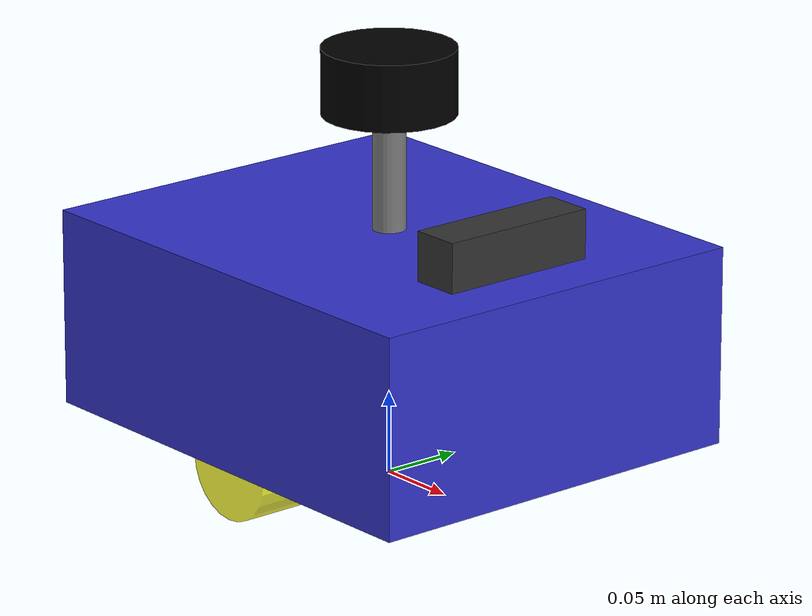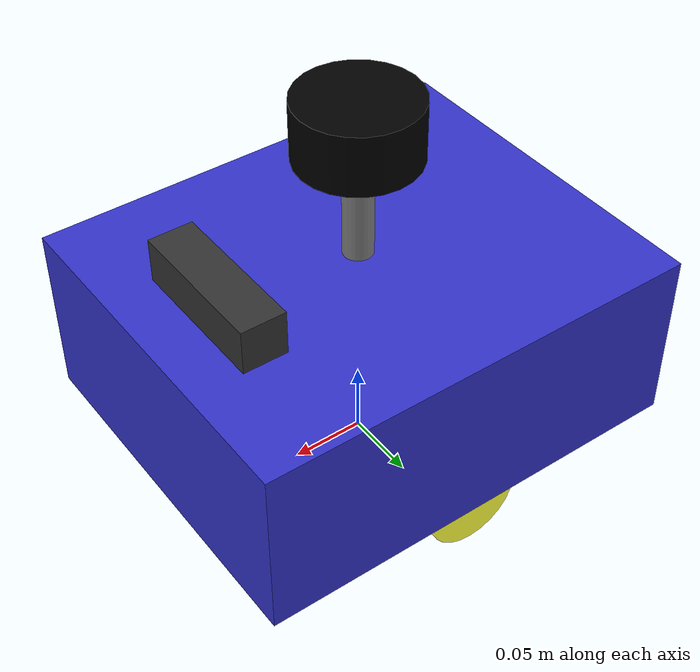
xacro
<?xml version="1.0"?>
<robot xmlns:xacro="http://www.ros.org/wiki/xacro" name="fishbot">
    <xacro:include filename="$(find smartcar_description)/urdf/smartcar/base.urdf.xacro"/>
    <!--传感器组件-->
    <xacro:include filename="$(find smartcar_description)/urdf/smartcar/sensor/imu.urdf.xacro"/>
    <xacro:include filename="$(find smartcar_description)/urdf/smartcar/sensor/laser.urdf.xacro"/>
    <xacro:include filename="$(find smartcar_description)/urdf/smartcar/sensor/camera.urdf.xacro"/>
    <xacro:base_xacro length="0.12" radius = "0.1"/>
    <!--传感器-->
    <xacro:imu_xacro xyz="0.0 0.0 0.02"/>
    <xacro:laser_xacro xyz="0.0 0.0 0.10"/>
    <xacro:camera_xacro xyz="0.10 0.0 0.075"/>
    <!--执行器组件-->
    <xacro:include filename="$(find smartcar_description)/urdf/smartcar/actuator/wheel.urdf.xacro"/>
    <xacro:include filename="$(find smartcar_description)/urdf/smartcar/actuator/caster.urdf.xacro"/>
    <!--执行器主动轮+从动轮-->
     <xacro:wheel_xacro wheel_name="left" xyz="0.0 0.10 -0.06"/>
     <xacro:wheel_xacro wheel_name="right" xyz="0.0 -0.10 -0.06"/>
     <xacro:caster_xacro caster_name="front" xyz="0.08 0.0 -0.076"/>
     <xacro:caster_xacro caster_name="back" xyz="-0.08 0.0 -0.076"/>
     <!--gazebo插件-->
    <xacro:include filename="$(find smartcar_description)/urdf/smartcar/fishbot.ros2_control.xacro"/>
    <xacro:smartcar_ros2_control/>
     <xacro:include filename="$(find smartcar_description)/urdf/smartcar/plugins/gazebo_sensor_plugin.xacro"/>
     <xacro:gazebo_sensor_plugin/>
</robot>

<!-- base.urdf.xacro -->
<robot xmlns:xacro="http://www.ros.org/wiki/xacro">
  <xacro:include filename="$(find smartcar_description)/urdf/smartcar/common_inertia.xacro"/>
   <xacro:macro name="base_xacro"  params= "length radius">
   <link name="base_footprint"/>
   <link name="base_link"   >
    <visual>
        <origin xyz="0.0 0.0 0.0" rpy="0.0 0.0 0.0"/>
        <geometry>
            <box size="0.30 0.25 0.12"/>
        </geometry>
        <material name="blue">
            <color rgba="0.2 0.2 0.8 1.0"/>
        </material>
    </visual>
    <collision>
        <origin xyz="0.0 0.0 0.0" rpy="0.0 0.0 0.0"/>
        <geometry>
            <box size="0.30 0.25 0.12"/>
        </geometry>
        <material name="blue">
            <color rgba="0.2 0.2 0.8 1.0"/>
        </material>
    </collision>
    <xacro:cylinder_inertia m="1.0" r="${radius}" h="${length}"/>
   </link>
   <joint name="base_joint" type="fixed">
    <origin xyz="0.0 0.0 ${length/2.0+0.032-0.001}" rpy="0.0 0.0 0.0"/>
    <parent link="base_footprint"/>
    <child link="base_link"/>
   </joint>
   </xacro:macro>
</robot>

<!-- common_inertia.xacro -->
<robot xmlns:xacro="http://www.ros.org/wiki/xacro">
    <xacro:macro name="box_inertia" params="m w h d">
    <inertial>
        <mass value="${m}"/>
        <inertia ixx="${m/12*(h*h+d*d)}" ixy="0.0" ixz="0.0" iyy="${(m/12)*(w*w+d*d)}" iyz="0.0" izz="${m/12*(w*w+h*h)}"/>
    </inertial>
    </xacro:macro>
    <xacro:macro name="cylinder_inertia"  params="m r h">
    <inertial>
        <mass value="${m}"/>
        <inertia ixx="${(m/12)*(3*r*r+h*h)}" ixy="0.0" ixz="0.0" iyy="${(m/12)*(3*r*r+h*h)}" iyz="0.0" izz="${(m/2)*(r*r)}"/>
        </inertial>
    </xacro:macro>
    <xacro:macro name="sphere_inertia" params="m r">
      <inertial>
        <mass value="${m}"/>
        <inertia ixx="${(2*m/5)*(r*r)}" ixy="0.0" ixz="0.0" iyy="${(2*m/5)*(r*r)}" iyz="0.0" izz="${(2*m/5)*(r*r)}"/>
      </inertial>
    </xacro:macro>
</robot>

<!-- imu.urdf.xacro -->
<robot xmlns:xacro="http://www.ros.org/wiki/xacro">
<xacro:include filename="$(find smartcar_description)/urdf/smartcar/common_inertia.xacro"/>
<xacro:macro name="imu_xacro" params="xyz">
    <link name="imu_link">
    <visual>
        <origin xyz="0.0 0.0 0.0" rpy="0.0 0.0 0.0"/>
        <geometry>
            <box size="0.02 0.02 0.02"/>
        </geometry>
        <material name="black">
            <color rgba="0.0 0.0 0.0 0.8"/>
        </material>
    </visual>
    <collision>
        <origin xyz="0.0 0.0 0.0" rpy="0.0 0.0 0.0"/>
        <geometry>
            <box size="0.02 0.02 0.02"/>
        </geometry>
        <material name="white">
            <color rgba="1.0 1.0 1.0 0.5"/>
        </material>
    </collision>
       <xacro:box_inertia m="0.1" w="0.02" h="0.02" d="0.02" />
    </link>

    <joint name="imu_joint" type="fixed">
    <parent link="base_link"/>
    <child link="imu_link"/>
    <origin xyz ="${xyz}"/>
    </joint>
</xacro:macro>
</robot>

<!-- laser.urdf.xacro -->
<robot xmlns:xacro="http://www.ros.org/wiki/xacro">
    <xacro:include filename="$(find smartcar_description)/urdf/smartcar/common_inertia.xacro"/>
    <xacro:macro name="laser_xacro" params="xyz">
        <gazebo reference="laser_cylinder_link">
            <material>Gazebo/Black</material>
        </gazebo>
        <gazebo reference="laser_link">
            <material>Gazebo/Black</material>
        </gazebo>
        <!--===========雷达支撑杆==========-->
        <link name="laser_cylinder_link">
            <visual>
                <origin xyz="0.0 0.0 0.0" rpy="0.0 0.0 0.0"/>
                <geometry>
                    <cylinder radius="0.01" length="0.08"/>
                </geometry>
                <material name="gray">
                    <color rgba="0.5 0.5 0.5 1.0"/>
                </material>
            </visual>
            <collision>
                <origin xyz="0.0 0.0 0.0" rpy="0.0 0.0 0.0"/>
                <geometry>
                    <cylinder radius="0.01" length="0.2"/>
                </geometry>
                <material name="white">
                    <color rgba="1.0 1.0 1.0 0.5"/>
                </material>
            </collision>
            <xacro:cylinder_inertia m="0.3" r="0.01" h="0.1"/>
        </link>

        <joint name="laser_cylinder_joint" type="fixed">
            <parent link="base_link"/>
            <child link="laser_cylinder_link"/>
            <origin xyz="${xyz}"/>
        </joint>

        <!--==========雷达==========-->
        <link name="laser_link">
            <visual>
                <origin xyz="0 0 0" rpy="0 0 0"/>
                <geometry>
                    <cylinder radius="0.04" length="0.04"/>
                </geometry>
                <material name="black">
                    <color rgba="0.0 0.0 0.0 1.0"/>
                </material>
            </visual>
            <collision>
                <origin xyz="0 0 0" rpy="0 0 0"/>
                <geometry>
                    <cylinder radius="0.04" length="0.04"/>
                </geometry>
            </collision>
            <xacro:cylinder_inertia m="0.1" r="0.04" h="0.04"/>
        </link>

        <joint name="laser_link_joint" type="fixed">
            <parent link="laser_cylinder_link"/>
            <child link="laser_link"/>
            <origin xyz="0 0 0.05" rpy="0 0 0"/>
        </joint>
    </xacro:macro>
</robot>

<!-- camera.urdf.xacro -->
<robot xmlns:xacro="http://www.ros.org/wiki/xacro">
<xacro:include filename="$(find smartcar_description)/urdf/smartcar/common_inertia.xacro"/>
    <xacro:macro name ="camera_xacro" params ="xyz">
    <!--============相机模块===========-->
    <link name="camera_link">
    <visual>
        <origin xyz="0.0 0.0 0.0" rpy="0.0 0.0 0.0"/>
        <geometry>
            <box size="0.03 0.1 0.03"/>
        </geometry>
        <material name="dark_grey">
            <color rgba="0.2 0.2 0.2 1.0"/>
        </material>
    </visual>
    <collision>
        <origin xyz="0.0 0.0 0.0" rpy="0.0 0.0 0.0"/>
        <geometry>
            <box size="0.05 0.05 0.05"/>
        </geometry>
        <material name="dark_grey">
            <color rgba="0.2 0.2 0.2 1.0"/>
        </material>
    </collision>
    <xacro:box_inertia m="0.1" w="0.05" h="0.05" d="0.05" />
    </link>
    <joint name="camera_joint" type="fixed">
        <parent link="base_link"/>
        <child link="camera_link"/>
        <origin xyz="${xyz}"/>
    </joint>
    <link name="camera_optical_link"></link>
    <joint name="camera_optical_joint" type="fixed">
        <parent link="camera_link"/>
        <child link="camera_optical_link"/>
        <origin xyz="0.0 0.0 0.0" rpy="${-pi/2} 0.0 ${-pi/2}"/>
    </joint>
</xacro:macro>
</robot>

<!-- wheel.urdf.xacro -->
<robot xmlns:xacro="http://www.ros.org/wiki/xacro">
     <xacro:include filename="$(find smartcar_description)/urdf/smartcar/common_inertia.xacro"/>
        <xacro:macro name="wheel_xacro" params="wheel_name xyz">
    <gazebo reference="${wheel_name}wheel_link">
        <mu1 value="20.0"/>
        <mu2 value="20.0"/>
        <kp value="1000000000.0"/>
        <kd value="1.0"/>
    </gazebo>
        <link name="${wheel_name}_wheel_link">
            <visual>
                <origin xyz="0.0 0.0 0.0" rpy="1.57079 0.0 0.0"/>
                <geometry>
                    <cylinder radius="0.032" length="0.04"/>
                </geometry>
                <material name="yellow">
                    <color rgba="1.0 1.0 0.0 0.8"/>
                </material>
            </visual>
            <collision>
                <origin xyz="0.0 0.0 0.0" rpy="1.57079 0.0 0.0"/>
                <geometry>
                    <cylinder radius="0.032" length="0.04"/>
                </geometry>
                <material name="white">
                    <color rgba="1.0 1.0 1.0 0.5"/>
                </material>
            </collision>
            <xacro:cylinder_inertia m="0.1" r="0.032" h="0.04" />
        </link>
        <joint name="${wheel_name}_wheel_joint" type="continuous">
            <origin xyz="${xyz}" />
            <parent link="base_link"/>
            <child link="${wheel_name}_wheel_link"/>
            <axis xyz="0.0 1.0 0.0"/>
        </joint>
        </xacro:macro>
    </robot>

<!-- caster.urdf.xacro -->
<robot xmlns:xacro="http://www.ros.org/wiki/xacro">
 <xacro:include filename="$(find smartcar_description)/urdf/smartcar/common_inertia.xacro"/>
    <xacro:macro name="caster_xacro"  params ="caster_name  xyz">
    <gazebo reference="${caster_name}_caster_link">
       <mu1 value="0.0"/>
       <mu2 value="0.0"/>
       <kp value= "100000000.0"/>
       <ka value= "1.0"/>
    </gazebo>
    <link name="${caster_name}_caster_link">
        <visual>
            <origin xyz="0.0 0.0 0.0" rpy="0.0 0.0 0.0"/>
            <geometry>
                <sphere radius="0.016"/>
            </geometry>
            <material name="yellow">
                <color rgba="1.0 1.0 0.0 0.8"/>
            </material>
        </visual>
        <collision>
            <origin xyz="0.0 0.0 0.0" rpy="0.0 0.0 0.0"/>
            <geometry>
                <sphere radius="0.016"/>
            </geometry>
            <material name="white">
                <color rgba="1.0 1.0 1.0 0.5"/>
            </material>
        </collision>
         <xacro:sphere_inertia m="0.1" r="0.016" />
    </link>
    <joint name="${caster_name}_caster_joint" type="fixed">
        <parent link="base_link"/>
        <child link="${caster_name}_caster_link"/>
        <origin xyz="${xyz}"/>
        <axis xyz="0.0 0.0 0.0"/>
    </joint>
    </xacro:macro>
</robot>
